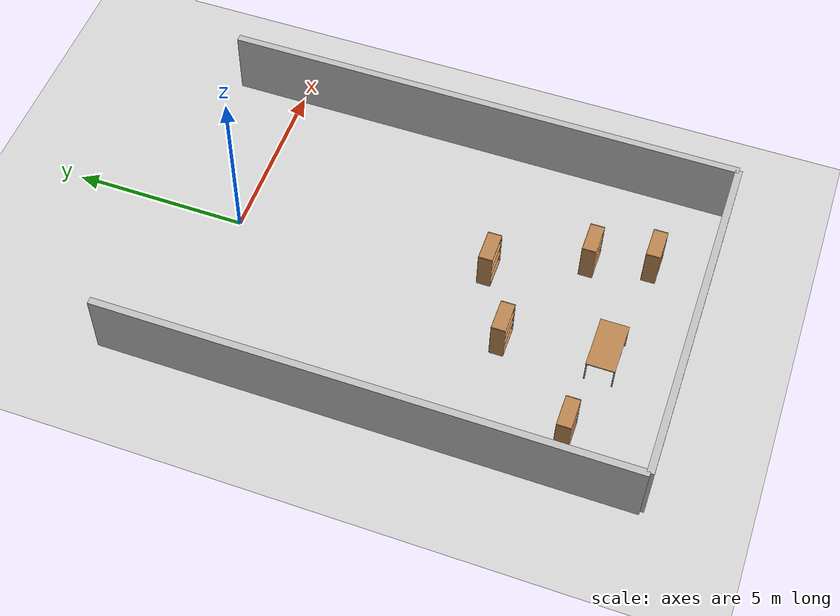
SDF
<sdf version="1.6">
 <world name="default">
  <model name="ground_plane">
   <static>1</static>
   <link name="link">
    <collision name="collision">
     <geometry><plane><normal>0 0 1</normal><size>100 100</size></plane></geometry>
     <surface><friction><ode><mu>100</mu><mu2>50</mu2></ode></friction></surface>
    </collision>
    <visual name="visual">
     <cast_shadows>0</cast_shadows>
     <geometry><plane><normal>0 0 1</normal><size>100 100</size></plane></geometry>
     <material>
      <script><uri>file://media/materials/scripts/gazebo.material</uri><name>Gazebo/Grey</name></script>
     </material>
    </visual>
    <velocity_decay><linear>0</linear><angular>0</angular></velocity_decay>
   </link>
  </model>
  <model name="wall_1_model">
   <pose>0 -13 1 0 -0 0</pose>
   <static>1</static>
   <link name="wall_1_body">
    <inertial>
     <mass>1</mass>
     <inertia><ixx>1</ixx><ixy>0</ixy><ixz>0</ixz><iyy>1</iyy><iyz>0</iyz><izz>1</izz></inertia>
    </inertial>
    <collision name="collision"><geometry><box><size>10 0.2 2</size></box></geometry></collision>
    <visual name="visual"><geometry><box><size>10 0.2 2</size></box></geometry></visual>
    <velocity_decay><linear>0</linear><angular>0</angular></velocity_decay>
   </link>
  </model>
  <model name="wall_3_model">
   <pose>-5 -5.5 1 0 -0 0</pose>
   <static>1</static>
   <link name="wall_3_body">
    <inertial>
     <mass>1</mass>
     <inertia><ixx>1</ixx><ixy>0</ixy><ixz>0</ixz><iyy>1</iyy><iyz>0</iyz><izz>1</izz></inertia>
    </inertial>
    <collision name="collision"><geometry><box><size>0.2 15 2</size></box></geometry></collision>
    <visual name="visual"><geometry><box><size>0.2 15 2</size></box></geometry></visual>
    <velocity_decay><linear>0</linear><angular>0</angular></velocity_decay>
   </link>
  </model>
  <model name="wall_4_model">
   <pose>5 -5.5 1 0 -0 0</pose>
   <static>1</static>
   <link name="wall_4_body">
    <inertial>
     <mass>1</mass>
     <inertia><ixx>1</ixx><ixy>0</ixy><ixz>0</ixz><iyy>1</iyy><iyz>0</iyz><izz>1</izz></inertia>
    </inertial>
    <collision name="collision"><geometry><box><size>0.2 15 2</size></box></geometry></collision>
    <visual name="visual"><geometry><box><size>0.2 15 2</size></box></geometry></visual>
    <velocity_decay><linear>0</linear><angular>0</angular></velocity_decay>
   </link>
  </model>
  <model name="bookshelf">
   <static>0</static>
   <link name="link">
    <inertial>
     <mass>1</mass>
     <inertia><ixx>1</ixx><ixy>0</ixy><ixz>0</ixz><iyy>1</iyy><iyz>0</iyz><izz>1</izz></inertia>
    </inertial>
    <collision name="back">
     <pose>0 0.005 0.6 0 -0 0</pose>
     <geometry><box><size>0.9 0.01 1.2</size></box></geometry>
    </collision>
    <visual name="visual1">
     <pose>0 0.005 0.6 0 -0 0</pose>
     <geometry><box><size>0.9 0.01 1.2</size></box></geometry>
     <material>
      <script><uri>file://media/materials/scripts/gazebo.material</uri><name>Gazebo/Wood</name></script>
     </material>
    </visual>
    <collision name="left_side">
     <pose>0.45 -0.195 0.6 0 -0 0</pose>
     <geometry><box><size>0.02 0.4 1.2</size></box></geometry>
    </collision>
    <visual name="visual2">
     <pose>0.45 -0.195 0.6 0 -0 0</pose>
     <geometry><box><size>0.02 0.4 1.2</size></box></geometry>
     <material>
      <script><uri>file://media/materials/scripts/gazebo.material</uri><name>Gazebo/Wood</name></script>
     </material>
    </visual>
    <collision name="right_side">
     <pose>-0.45 -0.195 0.6 0 -0 0</pose>
     <geometry><box><size>0.02 0.4 1.2</size></box></geometry>
    </collision>
    <visual name="visual3">
     <pose>-0.45 -0.195 0.6 0 -0 0</pose>
     <geometry><box><size>0.02 0.4 1.2</size></box></geometry>
     <material>
      <script><uri>file://media/materials/scripts/gazebo.material</uri><name>Gazebo/Wood</name></script>
     </material>
    </visual>
    <collision name="bottom">
     <pose>0 -0.195 0.03 0 -0 0</pose>
     <geometry><box><size>0.88 0.4 0.06</size></box></geometry>
    </collision>
    <visual name="visual4">
     <pose>0 -0.195 0.03 0 -0 0</pose>
     <geometry><box><size>0.88 0.4 0.06</size></box></geometry>
     <material>
      <script><uri>file://media/materials/scripts/gazebo.material</uri><name>Gazebo/Wood</name></script>
     </material>
    </visual>
    <collision name="top">
     <pose>0 -0.195 1.19 0 -0 0</pose>
     <geometry><box><size>0.88 0.4 0.02</size></box></geometry>
    </collision>
    <visual name="visual5">
     <pose>0 -0.195 1.19 0 -0 0</pose>
     <geometry><box><size>0.88 0.4 0.02</size></box></geometry>
     <material>
      <script><uri>file://media/materials/scripts/gazebo.material</uri><name>Gazebo/Wood</name></script>
     </material>
    </visual>
    <collision name="low_shelf">
     <pose>0 -0.195 0.43 0 -0 0</pose>
     <geometry><box><size>0.88 0.4 0.02</size></box></geometry>
    </collision>
    <visual name="visual6">
     <pose>0 -0.195 0.43 0 -0 0</pose>
     <geometry><box><size>0.88 0.4 0.02</size></box></geometry>
     <material>
      <script><uri>file://media/materials/scripts/gazebo.material</uri><name>Gazebo/Wood</name></script>
     </material>
    </visual>
    <collision name="high_shelf">
     <pose>0 -0.195 0.8 0 -0 0</pose>
     <geometry><box><size>0.88 0.4 0.02</size></box></geometry>
    </collision>
    <visual name="visual7">
     <pose>0 -0.195 0.8 0 -0 0</pose>
     <geometry><box><size>0.88 0.4 0.02</size></box></geometry>
     <material>
      <script><uri>file://media/materials/scripts/gazebo.material</uri><name>Gazebo/Wood</name></script>
     </material>
    </visual>
    <velocity_decay><linear>0</linear><angular>0</angular></velocity_decay>
   </link>
   <pose>2 -9.55401 1e-06 -7e-06 -1e-06 0</pose>
  </model>
  <model name="bookshelf_2">
   <static>0</static>
   <link name="link">
    <inertial>
     <mass>1</mass>
     <inertia><ixx>1</ixx><ixy>0</ixy><ixz>0</ixz><iyy>1</iyy><iyz>0</iyz><izz>1</izz></inertia>
    </inertial>
    <collision name="back">
     <pose>0 0.005 0.6 0 -0 0</pose>
     <geometry><box><size>0.9 0.01 1.2</size></box></geometry>
    </collision>
    <visual name="visual1">
     <pose>0 0.005 0.6 0 -0 0</pose>
     <geometry><box><size>0.9 0.01 1.2</size></box></geometry>
     <material>
      <script><uri>file://media/materials/scripts/gazebo.material</uri><name>Gazebo/Wood</name></script>
     </material>
    </visual>
    <collision name="left_side">
     <pose>0.45 -0.195 0.6 0 -0 0</pose>
     <geometry><box><size>0.02 0.4 1.2</size></box></geometry>
    </collision>
    <visual name="visual2">
     <pose>0.45 -0.195 0.6 0 -0 0</pose>
     <geometry><box><size>0.02 0.4 1.2</size></box></geometry>
     <material>
      <script><uri>file://media/materials/scripts/gazebo.material</uri><name>Gazebo/Wood</name></script>
     </material>
    </visual>
    <collision name="right_side">
     <pose>-0.45 -0.195 0.6 0 -0 0</pose>
     <geometry><box><size>0.02 0.4 1.2</size></box></geometry>
    </collision>
    <visual name="visual3">
     <pose>-0.45 -0.195 0.6 0 -0 0</pose>
     <geometry><box><size>0.02 0.4 1.2</size></box></geometry>
     <material>
      <script><uri>file://media/materials/scripts/gazebo.material</uri><name>Gazebo/Wood</name></script>
     </material>
    </visual>
    <collision name="bottom">
     <pose>0 -0.195 0.03 0 -0 0</pose>
     <geometry><box><size>0.88 0.4 0.06</size></box></geometry>
    </collision>
    <visual name="visual4">
     <pose>0 -0.195 0.03 0 -0 0</pose>
     <geometry><box><size>0.88 0.4 0.06</size></box></geometry>
     <material>
      <script><uri>file://media/materials/scripts/gazebo.material</uri><name>Gazebo/Wood</name></script>
     </material>
    </visual>
    <collision name="top">
     <pose>0 -0.195 1.19 0 -0 0</pose>
     <geometry><box><size>0.88 0.4 0.02</size></box></geometry>
    </collision>
    <visual name="visual5">
     <pose>0 -0.195 1.19 0 -0 0</pose>
     <geometry><box><size>0.88 0.4 0.02</size></box></geometry>
     <material>
      <script><uri>file://media/materials/scripts/gazebo.material</uri><name>Gazebo/Wood</name></script>
     </material>
    </visual>
    <collision name="low_shelf">
     <pose>0 -0.195 0.43 0 -0 0</pose>
     <geometry><box><size>0.88 0.4 0.02</size></box></geometry>
    </collision>
    <visual name="visual6">
     <pose>0 -0.195 0.43 0 -0 0</pose>
     <geometry><box><size>0.88 0.4 0.02</size></box></geometry>
     <material>
      <script><uri>file://media/materials/scripts/gazebo.material</uri><name>Gazebo/Wood</name></script>
     </material>
    </visual>
    <collision name="high_shelf">
     <pose>0 -0.195 0.8 0 -0 0</pose>
     <geometry><box><size>0.88 0.4 0.02</size></box></geometry>
    </collision>
    <visual name="visual7">
     <pose>0 -0.195 0.8 0 -0 0</pose>
     <geometry><box><size>0.88 0.4 0.02</size></box></geometry>
     <material>
      <script><uri>file://media/materials/scripts/gazebo.material</uri><name>Gazebo/Wood</name></script>
     </material>
    </visual>
    <velocity_decay><linear>0</linear><angular>0</angular></velocity_decay>
   </link>
   <pose>-1.30122 -7.99165 -1e-06 -7e-05 -3e-06 0</pose>
  </model>
  <model name="table_1">
   <static>0</static>
   <link name="link">
    <collision name="surface">
     <pose>0 0 0.9 0 -0 0</pose>
     <geometry><box><size>1.5 0.8 0.03</size></box></geometry>
    </collision>
    <visual name="visual1">
     <pose>0 0 0.9 0 -0 0</pose>
     <geometry><box><size>1.5 0.8 0.03</size></box></geometry>
     <material>
      <script><uri>file://media/materials/scripts/gazebo.material</uri><name>Gazebo/Wood</name></script>
     </material>
    </visual>
    <collision name="front_left_leg">
     <pose>0.68 0.38 0.5 0 -0 0</pose>
     <geometry><cylinder><radius>0.02</radius><length>0.8</length></cylinder></geometry>
    </collision>
    <visual name="front_left_leg">
     <pose>0.68 0.38 0.5 0 -0 0</pose>
     <geometry><cylinder><radius>0.02</radius><length>0.8</length></cylinder></geometry>
     <material>
      <script><uri>file://media/materials/scripts/gazebo.material</uri><name>Gazebo/Grey</name></script>
     </material>
    </visual>
    <collision name="front_right_leg">
     <pose>0.68 -0.38 0.5 0 -0 0</pose>
     <geometry><cylinder><radius>0.02</radius><length>0.8</length></cylinder></geometry>
    </collision>
    <visual name="front_right_leg">
     <pose>0.68 -0.38 0.5 0 -0 0</pose>
     <geometry><cylinder><radius>0.02</radius><length>0.8</length></cylinder></geometry>
     <material>
      <script><uri>file://media/materials/scripts/gazebo.material</uri><name>Gazebo/Grey</name></script>
     </material>
    </visual>
    <collision name="back_right_leg">
     <pose>-0.68 -0.38 0.5 0 -0 0</pose>
     <geometry><cylinder><radius>0.02</radius><length>0.8</length></cylinder></geometry>
    </collision>
    <visual name="back_right_leg">
     <pose>-0.68 -0.38 0.5 0 -0 0</pose>
     <geometry><cylinder><radius>0.02</radius><length>0.8</length></cylinder></geometry>
     <material>
      <script><uri>file://media/materials/scripts/gazebo.material</uri><name>Gazebo/Grey</name></script>
     </material>
    </visual>
    <collision name="back_left_leg">
     <pose>-0.68 0.38 0.5 0 -0 0</pose>
     <geometry><cylinder><radius>0.02</radius><length>0.8</length></cylinder></geometry>
    </collision>
    <visual name="back_left_leg">
     <pose>-0.68 0.38 0.5 0 -0 0</pose>
     <geometry><cylinder><radius>0.02</radius><length>0.8</length></cylinder></geometry>
     <material>
      <script><uri>file://media/materials/scripts/gazebo.material</uri><name>Gazebo/Grey</name></script>
     </material>
    </visual>
    <velocity_decay><linear>0</linear><angular>0</angular></velocity_decay>
    <inertial>
     <inertia><ixx>1</ixx><ixy>0</ixy><ixz>0</ixz><iyy>1</iyy><iyz>0</iyz><izz>1</izz></inertia>
     <mass>1</mass>
    </inertial>
   </link>
   <pose>-0.99999 -11.0004 -0.100001 -0 1e-06 -0.00036</pose>
  </model>
  <model name="bookshelf_3">
   <static>0</static>
   <link name="link">
    <inertial>
     <mass>1</mass>
     <inertia><ixx>1</ixx><ixy>0</ixy><ixz>0</ixz><iyy>1</iyy><iyz>0</iyz><izz>1</izz></inertia>
    </inertial>
    <collision name="back">
     <pose>0 0.005 0.6 0 -0 0</pose>
     <geometry><box><size>0.9 0.01 1.2</size></box></geometry>
    </collision>
    <visual name="visual1">
     <pose>0 0.005 0.6 0 -0 0</pose>
     <geometry><box><size>0.9 0.01 1.2</size></box></geometry>
     <material>
      <script><uri>file://media/materials/scripts/gazebo.material</uri><name>Gazebo/Wood</name></script>
     </material>
    </visual>
    <collision name="left_side">
     <pose>0.45 -0.195 0.6 0 -0 0</pose>
     <geometry><box><size>0.02 0.4 1.2</size></box></geometry>
    </collision>
    <visual name="visual2">
     <pose>0.45 -0.195 0.6 0 -0 0</pose>
     <geometry><box><size>0.02 0.4 1.2</size></box></geometry>
     <material>
      <script><uri>file://media/materials/scripts/gazebo.material</uri><name>Gazebo/Wood</name></script>
     </material>
    </visual>
    <collision name="right_side">
     <pose>-0.45 -0.195 0.6 0 -0 0</pose>
     <geometry><box><size>0.02 0.4 1.2</size></box></geometry>
    </collision>
    <visual name="visual3">
     <pose>-0.45 -0.195 0.6 0 -0 0</pose>
     <geometry><box><size>0.02 0.4 1.2</size></box></geometry>
     <material>
      <script><uri>file://media/materials/scripts/gazebo.material</uri><name>Gazebo/Wood</name></script>
     </material>
    </visual>
    <collision name="bottom">
     <pose>0 -0.195 0.03 0 -0 0</pose>
     <geometry><box><size>0.88 0.4 0.06</size></box></geometry>
    </collision>
    <visual name="visual4">
     <pose>0 -0.195 0.03 0 -0 0</pose>
     <geometry><box><size>0.88 0.4 0.06</size></box></geometry>
     <material>
      <script><uri>file://media/materials/scripts/gazebo.material</uri><name>Gazebo/Wood</name></script>
     </material>
    </visual>
    <collision name="top">
     <pose>0 -0.195 1.19 0 -0 0</pose>
     <geometry><box><size>0.88 0.4 0.02</size></box></geometry>
    </collision>
    <visual name="visual5">
     <pose>0 -0.195 1.19 0 -0 0</pose>
     <geometry><box><size>0.88 0.4 0.02</size></box></geometry>
     <material>
      <script><uri>file://media/materials/scripts/gazebo.material</uri><name>Gazebo/Wood</name></script>
     </material>
    </visual>
    <collision name="low_shelf">
     <pose>0 -0.195 0.43 0 -0 0</pose>
     <geometry><box><size>0.88 0.4 0.02</size></box></geometry>
    </collision>
    <visual name="visual6">
     <pose>0 -0.195 0.43 0 -0 0</pose>
     <geometry><box><size>0.88 0.4 0.02</size></box></geometry>
     <material>
      <script><uri>file://media/materials/scripts/gazebo.material</uri><name>Gazebo/Wood</name></script>
     </material>
    </visual>
    <collision name="high_shelf">
     <pose>0 -0.195 0.8 0 -0 0</pose>
     <geometry><box><size>0.88 0.4 0.02</size></box></geometry>
    </collision>
    <visual name="visual7">
     <pose>0 -0.195 0.8 0 -0 0</pose>
     <geometry><box><size>0.88 0.4 0.02</size></box></geometry>
     <material>
      <script><uri>file://media/materials/scripts/gazebo.material</uri><name>Gazebo/Wood</name></script>
     </material>
    </visual>
    <velocity_decay><linear>0</linear><angular>0</angular></velocity_decay>
   </link>
   <pose>2.40248 -11.2446 0 -4e-05 0 0</pose>
  </model>
  <model name="bookshelf_4">
   <static>0</static>
   <link name="link">
    <inertial>
     <mass>1</mass>
     <inertia><ixx>1</ixx><ixy>0</ixy><ixz>0</ixz><iyy>1</iyy><iyz>0</iyz><izz>1</izz></inertia>
    </inertial>
    <collision name="back">
     <pose>0 0.005 0.6 0 -0 0</pose>
     <geometry><box><size>0.9 0.01 1.2</size></box></geometry>
    </collision>
    <visual name="visual1">
     <pose>0 0.005 0.6 0 -0 0</pose>
     <geometry><box><size>0.9 0.01 1.2</size></box></geometry>
     <material>
      <script><uri>file://media/materials/scripts/gazebo.material</uri><name>Gazebo/Wood</name></script>
     </material>
    </visual>
    <collision name="left_side">
     <pose>0.45 -0.195 0.6 0 -0 0</pose>
     <geometry><box><size>0.02 0.4 1.2</size></box></geometry>
    </collision>
    <visual name="visual2">
     <pose>0.45 -0.195 0.6 0 -0 0</pose>
     <geometry><box><size>0.02 0.4 1.2</size></box></geometry>
     <material>
      <script><uri>file://media/materials/scripts/gazebo.material</uri><name>Gazebo/Wood</name></script>
     </material>
    </visual>
    <collision name="right_side">
     <pose>-0.45 -0.195 0.6 0 -0 0</pose>
     <geometry><box><size>0.02 0.4 1.2</size></box></geometry>
    </collision>
    <visual name="visual3">
     <pose>-0.45 -0.195 0.6 0 -0 0</pose>
     <geometry><box><size>0.02 0.4 1.2</size></box></geometry>
     <material>
      <script><uri>file://media/materials/scripts/gazebo.material</uri><name>Gazebo/Wood</name></script>
     </material>
    </visual>
    <collision name="bottom">
     <pose>0 -0.195 0.03 0 -0 0</pose>
     <geometry><box><size>0.88 0.4 0.06</size></box></geometry>
    </collision>
    <visual name="visual4">
     <pose>0 -0.195 0.03 0 -0 0</pose>
     <geometry><box><size>0.88 0.4 0.06</size></box></geometry>
     <material>
      <script><uri>file://media/materials/scripts/gazebo.material</uri><name>Gazebo/Wood</name></script>
     </material>
    </visual>
    <collision name="top">
     <pose>0 -0.195 1.19 0 -0 0</pose>
     <geometry><box><size>0.88 0.4 0.02</size></box></geometry>
    </collision>
    <visual name="visual5">
     <pose>0 -0.195 1.19 0 -0 0</pose>
     <geometry><box><size>0.88 0.4 0.02</size></box></geometry>
     <material>
      <script><uri>file://media/materials/scripts/gazebo.material</uri><name>Gazebo/Wood</name></script>
     </material>
    </visual>
    <collision name="low_shelf">
     <pose>0 -0.195 0.43 0 -0 0</pose>
     <geometry><box><size>0.88 0.4 0.02</size></box></geometry>
    </collision>
    <visual name="visual6">
     <pose>0 -0.195 0.43 0 -0 0</pose>
     <geometry><box><size>0.88 0.4 0.02</size></box></geometry>
     <material>
      <script><uri>file://media/materials/scripts/gazebo.material</uri><name>Gazebo/Wood</name></script>
     </material>
    </visual>
    <collision name="high_shelf">
     <pose>0 -0.195 0.8 0 -0 0</pose>
     <geometry><box><size>0.88 0.4 0.02</size></box></geometry>
    </collision>
    <visual name="visual7">
     <pose>0 -0.195 0.8 0 -0 0</pose>
     <geometry><box><size>0.88 0.4 0.02</size></box></geometry>
     <material>
      <script><uri>file://media/materials/scripts/gazebo.material</uri><name>Gazebo/Wood</name></script>
     </material>
    </visual>
    <velocity_decay><linear>0</linear><angular>0</angular></velocity_decay>
   </link>
   <pose>0.769583 -6.97603 0 -3.1e-05 0 0</pose>
  </model>
  <model name="bookshelf_5">
   <static>0</static>
   <link name="link">
    <inertial>
     <mass>1</mass>
     <inertia><ixx>1</ixx><ixy>0</ixy><ixz>0</ixz><iyy>1</iyy><iyz>0</iyz><izz>1</izz></inertia>
    </inertial>
    <collision name="back">
     <pose>0 0.005 0.6 0 -0 0</pose>
     <geometry><box><size>0.9 0.01 1.2</size></box></geometry>
    </collision>
    <visual name="visual1">
     <pose>0 0.005 0.6 0 -0 0</pose>
     <geometry><box><size>0.9 0.01 1.2</size></box></geometry>
     <material>
      <script><uri>file://media/materials/scripts/gazebo.material</uri><name>Gazebo/Wood</name></script>
     </material>
    </visual>
    <collision name="left_side">
     <pose>0.45 -0.195 0.6 0 -0 0</pose>
     <geometry><box><size>0.02 0.4 1.2</size></box></geometry>
    </collision>
    <visual name="visual2">
     <pose>0.45 -0.195 0.6 0 -0 0</pose>
     <geometry><box><size>0.02 0.4 1.2</size></box></geometry>
     <material>
      <script><uri>file://media/materials/scripts/gazebo.material</uri><name>Gazebo/Wood</name></script>
     </material>
    </visual>
    <collision name="right_side">
     <pose>-0.45 -0.195 0.6 0 -0 0</pose>
     <geometry><box><size>0.02 0.4 1.2</size></box></geometry>
    </collision>
    <visual name="visual3">
     <pose>-0.45 -0.195 0.6 0 -0 0</pose>
     <geometry><box><size>0.02 0.4 1.2</size></box></geometry>
     <material>
      <script><uri>file://media/materials/scripts/gazebo.material</uri><name>Gazebo/Wood</name></script>
     </material>
    </visual>
    <collision name="bottom">
     <pose>0 -0.195 0.03 0 -0 0</pose>
     <geometry><box><size>0.88 0.4 0.06</size></box></geometry>
    </collision>
    <visual name="visual4">
     <pose>0 -0.195 0.03 0 -0 0</pose>
     <geometry><box><size>0.88 0.4 0.06</size></box></geometry>
     <material>
      <script><uri>file://media/materials/scripts/gazebo.material</uri><name>Gazebo/Wood</name></script>
     </material>
    </visual>
    <collision name="top">
     <pose>0 -0.195 1.19 0 -0 0</pose>
     <geometry><box><size>0.88 0.4 0.02</size></box></geometry>
    </collision>
    <visual name="visual5">
     <pose>0 -0.195 1.19 0 -0 0</pose>
     <geometry><box><size>0.88 0.4 0.02</size></box></geometry>
     <material>
      <script><uri>file://media/materials/scripts/gazebo.material</uri><name>Gazebo/Wood</name></script>
     </material>
    </visual>
    <collision name="low_shelf">
     <pose>0 -0.195 0.43 0 -0 0</pose>
     <geometry><box><size>0.88 0.4 0.02</size></box></geometry>
    </collision>
    <visual name="visual6">
     <pose>0 -0.195 0.43 0 -0 0</pose>
     <geometry><box><size>0.88 0.4 0.02</size></box></geometry>
     <material>
      <script><uri>file://media/materials/scripts/gazebo.material</uri><name>Gazebo/Wood</name></script>
     </material>
    </visual>
    <collision name="high_shelf">
     <pose>0 -0.195 0.8 0 -0 0</pose>
     <geometry><box><size>0.88 0.4 0.02</size></box></geometry>
    </collision>
    <visual name="visual7">
     <pose>0 -0.195 0.8 0 -0 0</pose>
     <geometry><box><size>0.88 0.4 0.02</size></box></geometry>
     <material>
      <script><uri>file://media/materials/scripts/gazebo.material</uri><name>Gazebo/Wood</name></script>
     </material>
    </visual>
    <velocity_decay><linear>0</linear><angular>0</angular></velocity_decay>
   </link>
   <pose>-3.53929 -10.4222 0 -1.7e-05 0 0</pose>
  </model>
 </world>
</sdf>
